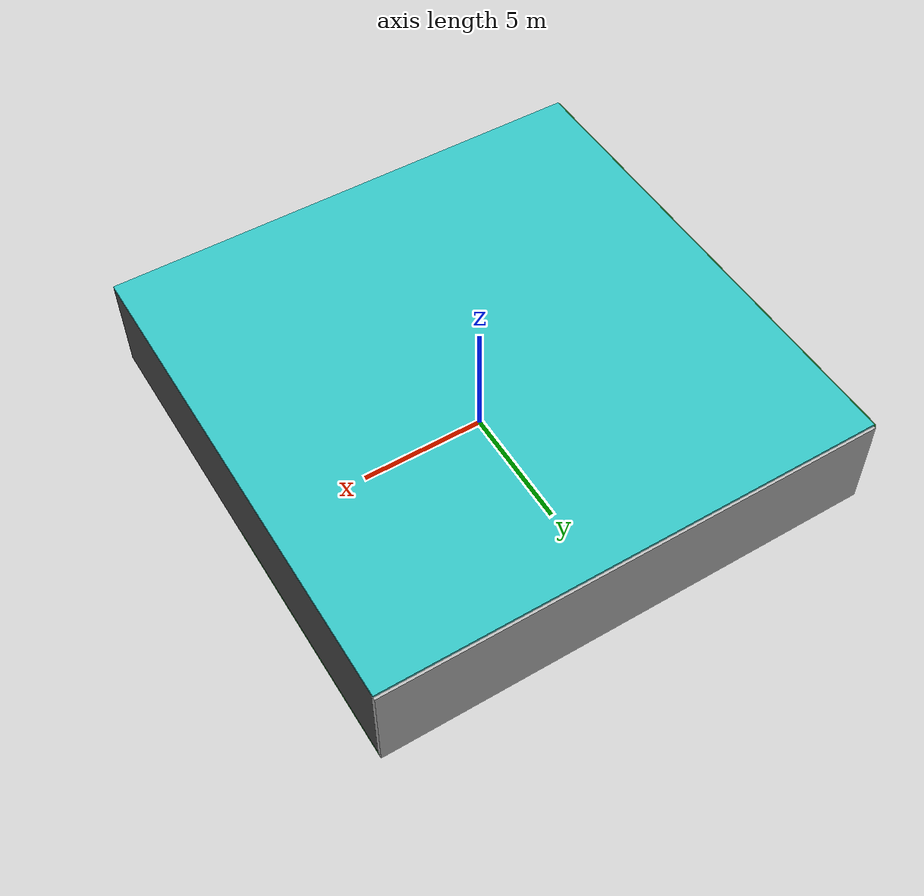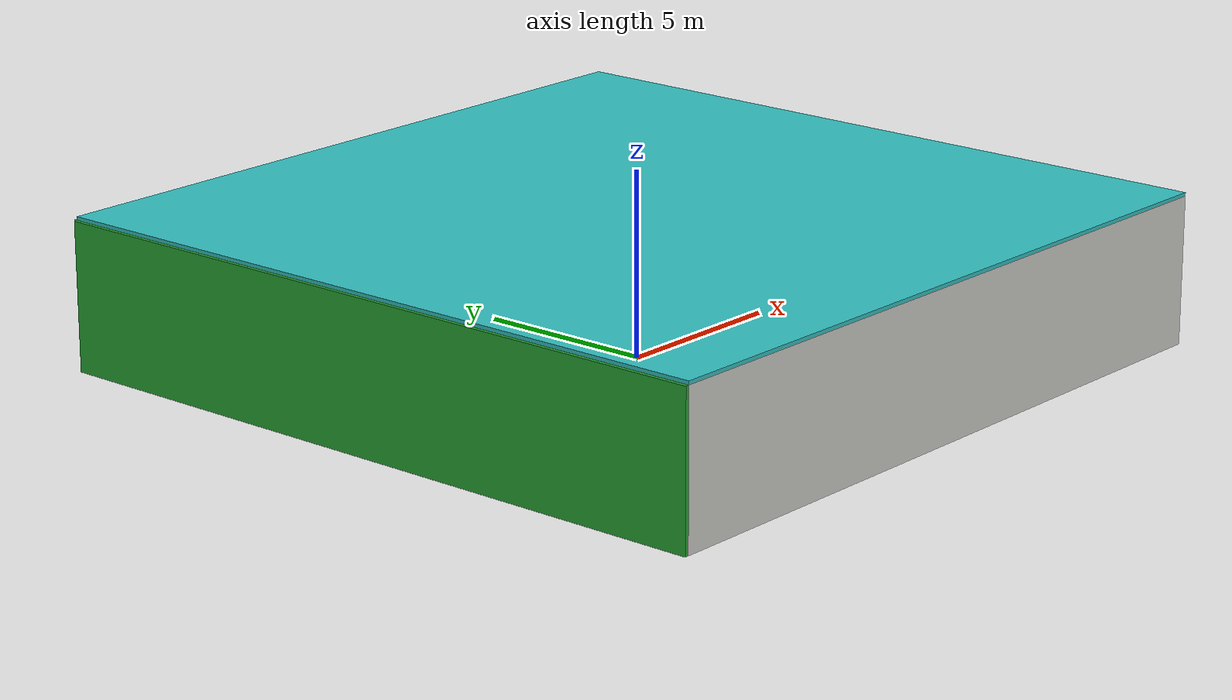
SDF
<sdf version="1.4">
 <world name="default">
  <physics type="ode">
   <max_step_size>0.001</max_step_size>
   <real_time_factor>1</real_time_factor>
   <real_time_update_rate>1000</real_time_update_rate>
   <gravity>0 0 -9.8</gravity>
  </physics>
  <scene><ambient>0.4 0.4 0.4 1</ambient><background>0.7 0.7 0.7 1</background><shadows>1</shadows></scene>
  <model name="Surrounding">
   <static>1</static>
   <link name="Ceiling">
    <collision name="Ceiling_Collision"><geometry><box><size>20 20 0.1</size></box></geometry></collision>
    <visual name="Ceiling_Visual">
     <geometry><box><size>20 20 0.1</size></box></geometry>
     <material>
      <script><uri>file://media/materials/scripts/gazebo.material</uri><name>Gazebo/TurquoiseGlow</name></script>
     </material>
    </visual>
    <pose>0 0 4.05 0 0 0</pose>
   </link>
   <link name="Wall_South">
    <collision name="Wall_South_Collision">
     <geometry><box><size>20 0 4</size></box></geometry>
     <pose>0 0 2 0 -0 0</pose>
    </collision>
    <visual name="Wall_South_Visual">
     <pose>0 0 2 0 -0 0</pose>
     <geometry><box><size>20 0 4</size></box></geometry>
     <material>
      <script><uri>file://media/materials/scripts/gazebo.material</uri><name>Gazebo/CeilingTiled</name></script>
     </material>
    </visual>
    <velocity_decay><linear>0</linear><angular>0</angular></velocity_decay>
    <pose>0 -10 0 0 -0 0</pose>
   </link>
   <link name="Wall_East">
    <collision name="Wall_21_Collision">
     <geometry><box><size>20 0 4</size></box></geometry>
     <pose>0 0 2 0 -0 0</pose>
    </collision>
    <visual name="Wall_21_Visual">
     <pose>0 0 2 0 -0 0</pose>
     <geometry><box><size>20 0 4</size></box></geometry>
     <material>
      <script><uri>file://media/materials/scripts/gazebo.material</uri><name>Gazebo/DarkGrey</name></script>
     </material>
    </visual>
    <velocity_decay><linear>0</linear><angular>0</angular></velocity_decay>
    <pose>10 0 0 0 -0 1.5708</pose>
   </link>
   <link name="Wall_North">
    <collision name="Wall_22_Collision">
     <geometry><box><size>20 0.2 4</size></box></geometry>
     <pose>0 0 2 0 -0 0</pose>
    </collision>
    <visual name="Wall_22_Visual">
     <pose>0 0 2 0 -0 0</pose>
     <geometry><box><size>20 0.2 4</size></box></geometry>
     <material>
      <script><uri>file://media/materials/scripts/gazebo.material</uri><name>Gazebo/LightOn</name></script>
     </material>
    </visual>
    <velocity_decay><linear>0</linear><angular>0</angular></velocity_decay>
    <pose>0 10 0 0 -0 0</pose>
   </link>
   <link name="Wall_West">
    <collision name="Wall_23_Collision">
     <geometry><box><size>20 0.2 4</size></box></geometry>
     <pose>0 0 2 0 -0 0</pose>
    </collision>
    <visual name="Wall_23_Visual">
     <pose>0 0 2 0 -0 0</pose>
     <geometry><box><size>20 0.2 4</size></box></geometry>
     <material>
      <script><uri>file://media/materials/scripts/gazebo.material</uri><name>Gazebo/GreenGlow</name></script>
     </material>
    </visual>
    <velocity_decay><linear>0</linear><angular>0</angular></velocity_decay>
    <pose>-10 0 0 0 0 -1.5708</pose>
   </link>
   <link name="Ground_link">
    <collision name="collision">
     <pose>0 0 .05 0 -0 0</pose>
     <geometry><box><size>20 20 0.1</size></box></geometry>
    </collision>
    <visual name="visual">
     <pose>0 0 .05 0 -0 0</pose>
     <geometry><box><size>20 20 0.1</size></box></geometry>
     <material>
      <script><uri>file://media/materials/scripts/gazebo.material</uri><name>Gazebo/Green</name></script>
     </material>
    </visual>
   </link>
   <static>1</static>
  </model>
  <spherical_coordinates>
   <surface_model>EARTH_WGS84</surface_model>
   <latitude_deg>0</latitude_deg>
   <longitude_deg>0</longitude_deg>
   <elevation>0</elevation>
   <heading_deg>0</heading_deg>
  </spherical_coordinates>
  <light name="lightball_0" type="diffuse">
   <diffuse>0.8 0.8 0.8 1</diffuse>
   <specular>0.2 0.2 0.2 1</specular>
   <attenuation>
    <range>100</range>
    <constant>0.7</constant>
    <linear>0.01</linear>
    <quadratic>0.001</quadratic>
   </attenuation>
   <direction>-0.5 0.1 -0.9</direction>
   <pose>-0.389054604673 0.121222314324 3.24743315432 0 0 0</pose>
  </light>
  <light name="lightball_1" type="diffuse">
   <diffuse>0.8 0.8 0.8 1</diffuse>
   <specular>0.2 0.2 0.2 1</specular>
   <attenuation>
    <range>100</range>
    <constant>0.7</constant>
    <linear>0.01</linear>
    <quadratic>0.001</quadratic>
   </attenuation>
   <direction>-0.5 0.1 -0.9</direction>
   <pose>0.223592481926 7.44589414011 2.91681458544 0 0 0</pose>
  </light>
  <light name="lightball_2" type="diffuse">
   <diffuse>0.8 0.8 0.8 1</diffuse>
   <specular>0.2 0.2 0.2 1</specular>
   <attenuation>
    <range>100</range>
    <constant>0.7</constant>
    <linear>0.01</linear>
    <quadratic>0.001</quadratic>
   </attenuation>
   <direction>-0.5 0.1 -0.9</direction>
   <pose>6.18080041003 -0.1540293735 2.05884851716 0 0 0</pose>
  </light>
  <light name="lightball_3" type="diffuse">
   <diffuse>0.8 0.8 0.8 1</diffuse>
   <specular>0.2 0.2 0.2 1</specular>
   <attenuation>
    <range>100</range>
    <constant>0.7</constant>
    <linear>0.01</linear>
    <quadratic>0.001</quadratic>
   </attenuation>
   <direction>-0.5 0.1 -0.9</direction>
   <pose>7.57195324094 -3.85650307237 3.82049692056 0 0 0</pose>
  </light>
  <light name="lightball_4" type="diffuse">
   <diffuse>0.8 0.8 0.8 1</diffuse>
   <specular>0.2 0.2 0.2 1</specular>
   <attenuation>
    <range>100</range>
    <constant>0.7</constant>
    <linear>0.01</linear>
    <quadratic>0.001</quadratic>
   </attenuation>
   <direction>-0.5 0.1 -0.9</direction>
   <pose>8.47513877993 0.576047822862 2.79506785815 0 0 0</pose>
  </light>
  <light name="lightball_5" type="diffuse">
   <diffuse>0.8 0.8 0.8 1</diffuse>
   <specular>0.2 0.2 0.2 1</specular>
   <attenuation>
    <range>100</range>
    <constant>0.7</constant>
    <linear>0.01</linear>
    <quadratic>0.001</quadratic>
   </attenuation>
   <direction>-0.5 0.1 -0.9</direction>
   <pose>2.55379325951 1.15821483913 3.33686464368 0 0 0</pose>
  </light>
  <light name="lightball_6" type="diffuse">
   <diffuse>0.8 0.8 0.8 1</diffuse>
   <specular>0.2 0.2 0.2 1</specular>
   <attenuation>
    <range>100</range>
    <constant>0.7</constant>
    <linear>0.01</linear>
    <quadratic>0.001</quadratic>
   </attenuation>
   <direction>-0.5 0.1 -0.9</direction>
   <pose>-1.87250373663 7.37336052076 0.58761317425 0 0 0</pose>
  </light>
  <light name="lightball_7" type="diffuse">
   <diffuse>0.8 0.8 0.8 1</diffuse>
   <specular>0.2 0.2 0.2 1</specular>
   <attenuation>
    <range>100</range>
    <constant>0.7</constant>
    <linear>0.01</linear>
    <quadratic>0.001</quadratic>
   </attenuation>
   <direction>-0.5 0.1 -0.9</direction>
   <pose>2.77857585136 3.65704841592 1.35108733519 0 0 0</pose>
  </light>
  <light name="lightball_8" type="diffuse">
   <diffuse>0.8 0.8 0.8 1</diffuse>
   <specular>0.2 0.2 0.2 1</specular>
   <attenuation>
    <range>100</range>
    <constant>0.7</constant>
    <linear>0.01</linear>
    <quadratic>0.001</quadratic>
   </attenuation>
   <direction>-0.5 0.1 -0.9</direction>
   <pose>-5.75712428382 3.02739157665 1.27466149698 0 0 0</pose>
  </light>
  <light name="lightball_9" type="diffuse">
   <diffuse>0.8 0.8 0.8 1</diffuse>
   <specular>0.2 0.2 0.2 1</specular>
   <attenuation>
    <range>100</range>
    <constant>0.7</constant>
    <linear>0.01</linear>
    <quadratic>0.001</quadratic>
   </attenuation>
   <direction>-0.5 0.1 -0.9</direction>
   <pose>-8.37280943619 -9.81194888059 3.53626586746 0 0 0</pose>
  </light>
  <light name="lightball_10" type="diffuse">
   <diffuse>0.8 0.8 0.8 1</diffuse>
   <specular>0.2 0.2 0.2 1</specular>
   <attenuation>
    <range>100</range>
    <constant>0.7</constant>
    <linear>0.01</linear>
    <quadratic>0.001</quadratic>
   </attenuation>
   <direction>-0.5 0.1 -0.9</direction>
   <pose>-3.32459299091 -8.08224276062 2.99082670699 0 0 0</pose>
  </light>
  <light name="lightball_11" type="diffuse">
   <diffuse>0.8 0.8 0.8 1</diffuse>
   <specular>0.2 0.2 0.2 1</specular>
   <attenuation>
    <range>100</range>
    <constant>0.7</constant>
    <linear>0.01</linear>
    <quadratic>0.001</quadratic>
   </attenuation>
   <direction>-0.5 0.1 -0.9</direction>
   <pose>-4.8498488364 4.75468691202 2.20808737421 0 0 0</pose>
  </light>
  <include>
   <uri>model://construction_cone</uri>
   <pose>2.64028068709 -7.41010539329 0 0 0 0.661823653854</pose>
  </include>
  <include><uri>model://table</uri><pose>1.78526709434 -5.31045717946 0 0 0 2.64914452609</pose></include>
  <include><uri>model://table</uri><pose>0.747664641161 1.72692698182 0 0 0 1.86384545435</pose></include>
  <include><uri>model://table</uri><pose>3.65713093398 1.97124549567 0 0 0 2.33232047343</pose></include>
  <include>
   <uri>model://robocup_3Dsim_goal</uri>
   <pose>4.58030729858 6.59697077893 0 0 0 1.59256625173</pose>
  </include>
 </world>
</sdf>

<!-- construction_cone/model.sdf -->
<sdf version="1.5">
  <model name="Construction Cone">
    <link name="link">
      <collision name="collision">
        <geometry>
          <mesh>
            <scale>10 10 10</scale>
            <uri>file://isr-testbed/construction_cone/meshes/construction_cone.dae</uri>
          </mesh>
        </geometry>
      </collision>
      <visual name="visual">
        <geometry>
          <mesh>
            <scale>10 10 10</scale>
            <uri>file://isr-testbed/construction_cone/meshes/construction_cone.dae</uri>
          </mesh>
        </geometry>
      </visual>
    </link>
  </model>
</sdf>

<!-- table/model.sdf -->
<sdf version="1.5">
  <model name="table">
    <static>true</static>
    <link name="link">
      <collision name="surface">
        <pose>0 0 1.0 0 0 0</pose>
        <geometry>
          <box>
            <size>1.5 0.8 0.03</size>
          </box>
        </geometry>
        <surface>
          <friction>
            <ode>
              <mu>0.6</mu>
              <mu2>0.6</mu2>
            </ode>
          </friction>
        </surface>
      </collision>
      <visual name="visual1">
        <pose>0 0 1.0 0 0 0</pose>
        <geometry>
          <box>
            <size>1.5 0.8 0.03</size>
          </box>
        </geometry>
        <material>
          <script>
            <uri>model://media/materials/scripts/gazebo.material</uri>
            <name>Gazebo/Wood</name>
          </script>
        </material>
      </visual>
      <collision name="front_left_leg">
        <pose>0.68 0.38 0.5 0 0 0</pose>
        <geometry>
          <cylinder>
            <radius>0.02</radius>
            <length>1.0</length>
          </cylinder>
        </geometry>
      </collision>
      <visual name="front_left_leg">
        <pose>0.68 0.38 0.5 0 0 0</pose>
        <geometry>
          <cylinder>
            <radius>0.02</radius>
            <length>1.0</length>
          </cylinder>
        </geometry>
        <material>
          <script>
            <uri>model://media/materials/scripts/gazebo.material</uri>
            <name>Gazebo/Grey</name>
          </script>
        </material>
      </visual>
      <collision name="front_right_leg">
        <pose>0.68 -0.38 0.5 0 0 0</pose>
        <geometry>
          <cylinder>
            <radius>0.02</radius>
            <length>1.0</length>
          </cylinder>
        </geometry>
      </collision>
      <visual name="front_right_leg">
        <pose>0.68 -0.38 0.5 0 0 0</pose>
        <geometry>
          <cylinder>
            <radius>0.02</radius>
            <length>1.0</length>
          </cylinder>
        </geometry>
        <material>
          <script>
            <uri>model://media/materials/scripts/gazebo.material</uri>
            <name>Gazebo/Grey</name>
          </script>
        </material>
      </visual>
      <collision name="back_right_leg">
        <pose>-0.68 -0.38 0.5 0 0 0</pose>
        <geometry>
          <cylinder>
            <radius>0.02</radius>
            <length>1.0</length>
          </cylinder>
        </geometry>
      </collision>
      <visual name="back_right_leg">
        <pose>-0.68 -0.38 0.5 0 0 0</pose>
        <geometry>
          <cylinder>
            <radius>0.02</radius>
            <length>1.0</length>
          </cylinder>
        </geometry>
        <material>
          <script>
            <uri>model://media/materials/scripts/gazebo.material</uri>
            <name>Gazebo/Grey</name>
          </script>
        </material>
      </visual>
      <collision name="back_left_leg">
        <pose>-0.68 0.38 0.5 0 0 0</pose>
        <geometry>
          <cylinder>
            <radius>0.02</radius>
            <length>1.0</length>
          </cylinder>
        </geometry>
      </collision>
      <visual name="back_left_leg">
        <pose>-0.68 0.38 0.5 0 0 0</pose>
        <geometry>
          <cylinder>
            <radius>0.02</radius>
            <length>1.0</length>
          </cylinder>
        </geometry>
        <material>
          <script>
            <uri>model://media/materials/scripts/gazebo.material</uri>
            <name>Gazebo/Grey</name>
          </script>
        </material>
      </visual>
    </link>
  </model>
</sdf>

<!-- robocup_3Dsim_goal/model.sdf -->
<sdf version="1.5">
  <model name="robocup_3d_goal">
    <static>true</static>
    <link name="left_post">
      <pose>0 1.05 0.45 0 0 0</pose>
      <collision name="collision">
        <geometry>
          <cylinder>
            <radius>0.05</radius>
            <length>0.9</length>
          </cylinder>
        </geometry>
      </collision>
      <visual name="visual">
        <geometry>
          <cylinder>
            <radius>0.05</radius>
            <length>0.9</length>
          </cylinder>
        </geometry>
        <material>
          <script>
            <uri>file://media/materials/scripts/gazebo.material</uri>
            <name>Gazebo/ZincYellow</name>
          </script>
        </material>
      </visual>
    </link>
    <link name="left_support_horiz_lower">
      <pose>0.30 1.05 0.01 0 0 0</pose>
      <collision name="collision">
        <geometry>
          <box>
            <size>0.50 0.02 0.02</size>
          </box>
        </geometry>
      </collision>
      <visual name="visual">
        <geometry>
          <box>
            <size>0.50 0.02 0.02</size>
          </box>
        </geometry>
        <material>
          <script>
            <uri>file://media/materials/scripts/gazebo.material</uri>
            <name>Gazebo/White</name>
          </script>
        </material>
      </visual>
    </link>
    <link name="left_support_horiz_upper">
      <pose>0.30 1.05 0.79 0 0 0</pose>
      <collision name="collision">
        <geometry>
          <box>
            <size>0.50 0.02 0.02</size>
          </box>
        </geometry>
      </collision>
      <visual name="visual">
        <geometry>
          <box>
            <size>0.50 0.02 0.02</size>
          </box>
        </geometry>
        <material>
          <script>
            <uri>file://media/materials/scripts/gazebo.material</uri>
            <name>Gazebo/White</name>
          </script>
        </material>
      </visual>
    </link>
    <link name="left_support_vertical">
      <pose>0.56 1.05 0.4 0 1.5708 0</pose>
      <collision name="collision">
        <geometry>
          <box>
            <size>0.80 0.02 0.02</size>
          </box>
        </geometry>
      </collision>
      <visual name="visual">
        <geometry>
          <box>
            <size>0.80 0.02 0.02</size>
          </box>
        </geometry>
        <material>
          <script>
            <uri>file://media/materials/scripts/gazebo.material</uri>
            <name>Gazebo/White</name>
          </script>
        </material>
      </visual>
    </link>
    <link name="right_support_horiz_lower">
      <pose>0.30 -1.05 0.01 0 0 0</pose>
      <collision name="collision">
        <geometry>
          <box>
            <size>0.50 0.02 0.02</size>
          </box>
        </geometry>
      </collision>
      <visual name="visual">
        <geometry>
          <box>
            <size>0.50 0.02 0.02</size>
          </box>
        </geometry>
        <material>
          <script>
            <uri>file://media/materials/scripts/gazebo.material</uri>
            <name>Gazebo/White</name>
          </script>
        </material>
      </visual>
    </link>
    <link name="right_support_horiz_upper">
      <pose>0.30 -1.05 0.79 0 0 0</pose>
      <collision name="collision">
        <geometry>
          <box>
            <size>0.50 0.02 0.02</size>
          </box>
        </geometry>
      </collision>
      <visual name="visual">
        <geometry>
          <box>
            <size>0.50 0.02 0.02</size>
          </box>
        </geometry>
        <material>
          <script>
            <uri>file://media/materials/scripts/gazebo.material</uri>
            <name>Gazebo/White</name>
          </script>
        </material>
      </visual>
    </link>
    <link name="right_support_vertical">
      <pose>0.56 -1.05 0.4 0 1.5708 0</pose>
      <collision name="collision">
        <geometry>
          <box>
            <size>0.80 0.02 0.02</size>
          </box>
        </geometry>
      </collision>
      <visual name="visual">
        <geometry>
          <box>
            <size>0.80 0.02 0.02</size>
          </box>
        </geometry>
        <material>
          <script>
            <uri>file://media/materials/scripts/gazebo.material</uri>
            <name>Gazebo/White</name>
          </script>
        </material>
      </visual>
    </link>
    <link name="center_support_horiz_lower">
      <pose>0.56 0 0.01 0 1.5708 0</pose>
      <collision name="collision">
        <geometry>
          <box>
            <size>0.02 2.08 0.02</size>
          </box>
        </geometry>
      </collision>
      <visual name="visual">
        <geometry>
          <box>
            <size>0.02 2.08 0.02</size>
          </box>
        </geometry>
        <material>
          <script>
            <uri>file://media/materials/scripts/gazebo.material</uri>
            <name>Gazebo/White</name>
          </script>
        </material>
      </visual>
    </link>
    <link name="center_support_horiz_upper">
      <pose>0.56 0 0.79 0 1.5708 0</pose>
      <collision name="collision">
        <geometry>
          <box>
            <size>0.02 2.08 0.02</size>
          </box>
        </geometry>
      </collision>
      <visual name="visual">
        <geometry>
          <box>
            <size>0.02 2.08 0.02</size>
          </box>
        </geometry>
        <material>
          <script>
            <uri>file://media/materials/scripts/gazebo.material</uri>
            <name>Gazebo/White</name>
          </script>
        </material>
      </visual>
    </link>
    <link name="right_post">
      <pose>0 -1.05 0.45 0 0 0</pose>
      <collision name="collision">
        <geometry>
          <cylinder>
            <radius>0.05</radius>
            <length>0.9</length>
          </cylinder>
        </geometry>
      </collision>
      <visual name="visual">
        <geometry>
          <cylinder>
            <radius>0.05</radius>
            <length>0.9</length>
          </cylinder>
        </geometry>
        <material>
          <script>
            <uri>file://media/materials/scripts/gazebo.material</uri>
            <name>Gazebo/ZincYellow</name>
          </script>
        </material>
      </visual>
    </link>
    <link name="crossbar">
      <pose>0 0 0.85 1.57 1.57 0</pose>
      <collision name="collision">
        <geometry>
          <cylinder>
            <radius>0.05</radius>
            <length>2.0</length>
          </cylinder>
        </geometry>
      </collision>
      <visual name="visual">
        <geometry>
          <cylinder>
            <radius>0.05</radius>
            <length>2.0</length>
          </cylinder>
        </geometry>
        <material>
          <script>
            <uri>file://media/materials/scripts/gazebo.material</uri>
            <name>Gazebo/ZincYellow</name>
          </script>
        </material>
      </visual>
    </link>
    <link name="center_net">
      <pose>0.56 0 0.40 0 0 0</pose>
      <collision name="collision">
        <geometry>
          <box>
            <size>0.01 2.1 0.80</size>
          </box>
        </geometry>
      </collision>
      <visual name="visual">
        <geometry>
          <box>
            <size>0.01 2.1 0.80</size>
          </box>
        </geometry>
        <material>
          <script>
            <uri>model://../model_source/models/robocup09_spl_field/materials/scripts/</uri>
            <uri>model://../model_source/models/robocup09_spl_field/materials/textures/</uri>
            <name>RoboCup/Net</name>
          </script>
        </material>
      </visual>
    </link>
    <link name="left_net">
      <pose>0.30 1.05 0.40 0 0 0</pose>
      <collision name="collision">
        <geometry>
          <box>
            <size>0.50 0.01 0.76</size>
          </box>
        </geometry>
      </collision>
      <visual name="visual">
        <geometry>
          <box>
            <size>0.50 0.01 0.76</size>
          </box>
        </geometry>
        <material>
          <script>
            <uri>model://../model_source/models/robocup09_spl_field/materials/scripts/</uri>
            <uri>model://../model_source/models/robocup09_spl_field/materials/textures/</uri>
            <name>RoboCup/Net</name>
          </script>
        </material>
      </visual>
    </link>
    <link name="right_net">
      <pose>0.30 -1.05 0.40 0 0 0</pose>
      <collision name="collision">
        <geometry>
          <box>
            <size>0.50 0.01 0.76</size>
          </box>
        </geometry>
      </collision>
      <visual name="visual">
        <geometry>
          <box>
            <size>0.50 0.01 0.76</size>
          </box>
        </geometry>
        <material>
          <script>
            <uri>model://../model_source/models/robocup09_spl_field/materials/scripts/</uri>
            <uri>model://../model_source/models/robocup09_spl_field/materials/textures/</uri>
            <name>RoboCup/Net</name>
          </script>
        </material>
      </visual>
    </link>
  </model>
</sdf>
